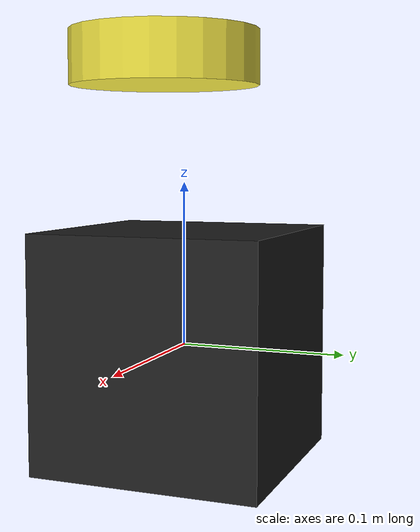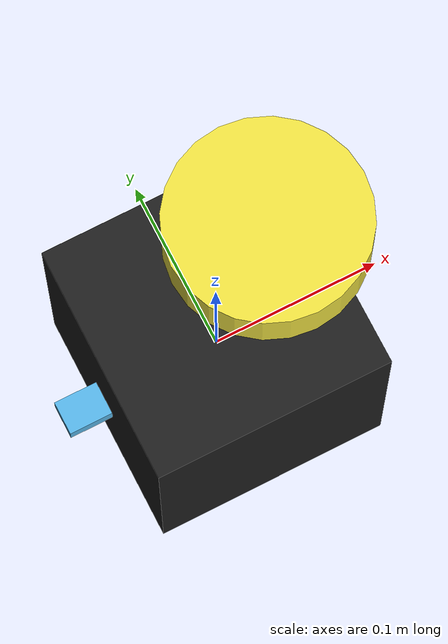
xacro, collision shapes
<?xml version="1.0" ?>
<robot name="turtlebot3_burger" xmlns:xacro="http://ros.org/wiki/xacro">
  <xacro:include filename="$(find turtlebot3_description)/urdf/common_properties.xacro"/>
  <xacro:include filename="$(find turtlebot3_description)/urdf/turtlebot3_burger.gazebo.xacro"/>

  <link name="base_link">
    <visual>
      <origin xyz="0 0 0" rpy="0 0 0"/>
      <geometry>
        <mesh filename="package://turtlebot3_description/meshes/bases/burger_base.stl" scale="0.001 0.001 0.001"/>
      </geometry>
      <material name="light_black"/>
    </visual>

    <collision>
      <origin xyz="0 0 0" rpy="0 0 0"/>
      <geometry>
        <box size="0.140 0.140 0.143"/>
      </geometry>
    </collision>

    <inertial>
      <origin xyz="0 0 0" rpy="0 0 0"/>
      <mass value="8.2573504e-01"/>
      <inertia ixx="2.2124416e-03" ixy="-1.2294101e-05" ixz="3.4938785e-05"
               iyy="2.1193702e-03" iyz="-5.0120904e-06"
               izz="2.0064271e-03" />
    </inertial>
  </link>

  <joint name="caster_back_joint" type="fixed">
    <parent link="base_link"/>
    <child link="caster_back_link"/>
    <origin xyz="-0.081 0 -0.004" rpy="-1.57 0 0"/>
  </joint>

  <link name="caster_back_link">
    <collision>
      <origin xyz="0 0.001 0" rpy="0 0 0"/>
      <geometry>
        <box size="0.030 0.009 0.020"/>
      </geometry>
    </collision>

    <inertial>
      <origin xyz="0 0 0" />
      <mass value="0.005" />
      <inertia ixx="0.001" ixy="0.0" ixz="0.0"
               iyy="0.001" iyz="0.0"
               izz="0.001" />
    </inertial>
  </link>

  <joint name="imu_joint" type="fixed">
    <parent link="base_link"/>
    <child link="imu_link"/>
    <origin xyz="-0.032 0 0.068" rpy="0 0 0"/>
  </joint>

  <link name="imu_link"/>

  <joint name="scan_joint" type="fixed">
    <parent link="base_link"/>
    <child link="base_scan"/>
    <origin xyz="0.03 0 0.172" rpy="0 0 0"/>
  </joint>

  <link name="base_scan">
    <visual>
      <origin xyz="0 0 0.0" rpy="0 0 0"/>
      <geometry>
        <mesh filename="package://turtlebot3_description/meshes/sensors/lds.stl" scale="0.001 0.001 0.001"/>
      </geometry>
      <material name="dark"/>
    </visual>

    <collision>
      <origin xyz="0 0 0" rpy="0 0 0"/>
      <geometry>
        <cylinder length="0.0315" radius="0.055"/>
      </geometry>
    </collision>

    <inertial>
      <mass value="0.114" />
      <origin xyz="0 0 0" />
      <inertia ixx="0.001" ixy="0.0" ixz="0.0"
               iyy="0.001" iyz="0.0"
               izz="0.001" />
    </inertial>
  </link>

</robot>
